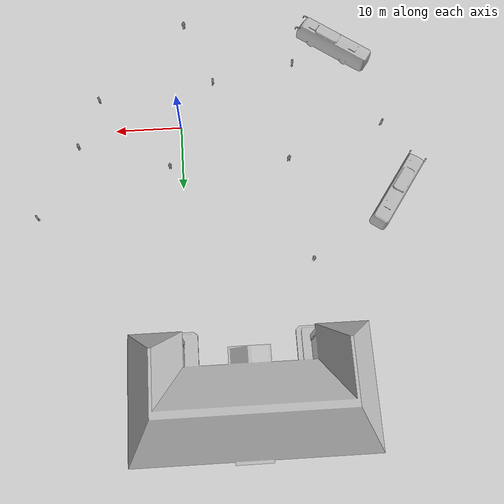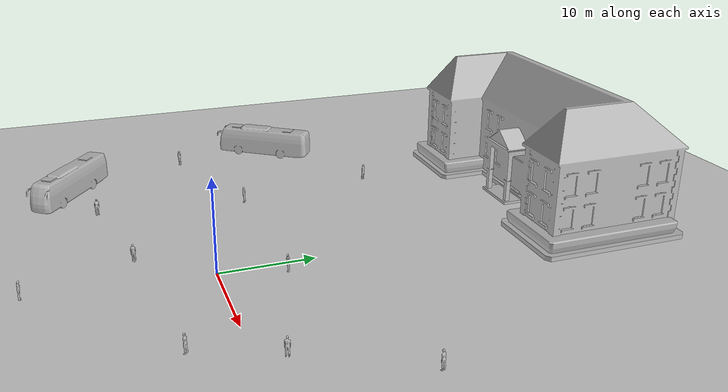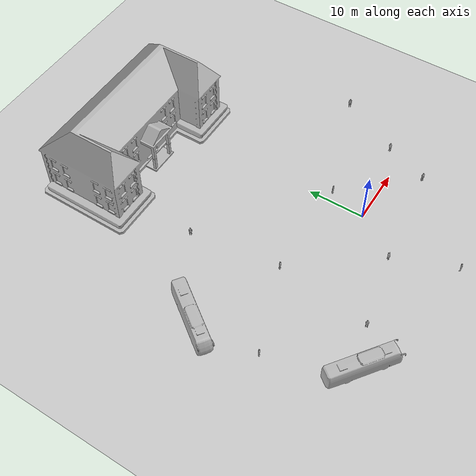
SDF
<sdf version="1.6">
 <world name="default">
  <light name="sun" type="directional">
   <pose>0 0 10 0 -0 0</pose>
   <diffuse>0.8 0.8 0.8 1</diffuse>
   <specular>0.2 0.2 0.2 1</specular>
   <attenuation>
    <range>1000</range>
    <constant>0.9</constant>
    <linear>0.01</linear>
    <quadratic>0.001</quadratic>
   </attenuation>
   <direction>-0.5 0.1 -0.9</direction>
  </light>
  <model name="ground_plane">
   <static>1</static>
   <link name="link">
    <collision name="collision">
     <geometry><plane><normal>0 0 1</normal><size>100 100</size></plane></geometry>
     <surface>
      <contact><collide_bitmask>65535</collide_bitmask></contact>
      <friction><ode><mu>100</mu><mu2>50</mu2></ode></friction>
     </surface>
    </collision>
    <visual name="visual">
     <cast_shadows>0</cast_shadows>
     <geometry><plane><normal>0 0 1</normal><size>100 100</size></plane></geometry>
     <material>
      <script><uri>file://media/materials/scripts/gazebo.material</uri><name>Gazebo/Grey</name></script>
     </material>
    </visual>
   </link>
  </model>
  <gravity>0 0 -9.8</gravity>
  <magnetic_field>6e-06 2.3e-05 -4.2e-05</magnetic_field>
  <atmosphere type="adiabatic"/>
  <physics name="default_physics" default="0" type="ode">
   <max_step_size>0.001</max_step_size>
   <real_time_factor>1</real_time_factor>
   <real_time_update_rate>1000</real_time_update_rate>
  </physics>
  <scene><ambient>0.4 0.4 0.4 1</ambient><background>0.7 0.7 0.7 1</background><shadows>1</shadows></scene>
  <audio><device>default</device></audio>
  <spherical_coordinates>
   <surface_model>EARTH_WGS84</surface_model>
   <latitude_deg>0</latitude_deg>
   <longitude_deg>0</longitude_deg>
   <elevation>0</elevation>
   <heading_deg>0</heading_deg>
  </spherical_coordinates>
  <model name="school">
   <static>1</static>
   <link name="link">
    <collision name="collision">
     <geometry><mesh><uri>model://school/meshes/school.dae</uri></mesh></geometry>
    </collision>
    <visual name="visual"><geometry><mesh><uri>model://school/meshes/school.dae</uri></mesh></geometry></visual>
   </link>
   <pose>-8.00051 42.5798 0 0 -0 0</pose>
  </model>
  <model name="person_standing">
   <link name="link">
    <inertial>
     <pose>0 -0.1 0.95 0 -0 0</pose>
     <mass>80</mass>
     <inertia><ixx>24.88</ixx><ixy>0</ixy><ixz>0</ixz><iyy>25.73</iyy><iyz>0</iyz><izz>2.48</izz></inertia>
    </inertial>
    <collision name="bottom">
     <pose>0 -0.1 0.01 0 -0 0</pose>
     <geometry><box><size>0.5 0.35 0.02</size></box></geometry>
    </collision>
    <collision name="person">
     <pose>0 0 0.02 0.04 -0 0</pose>
     <geometry><mesh><uri>model://person_standing/meshes/standing.dae</uri></mesh></geometry>
    </collision>
    <visual name="visual">
     <pose>0 0 0.02 0.04 -0 0</pose>
     <geometry><mesh><uri>model://person_standing/meshes/standing.dae</uri></mesh></geometry>
    </visual>
   </link>
   <pose>-16.015 6.48712 -0 -1e-06 -1e-06 0.021681</pose>
  </model>
  <model name="person_standing_clone">
   <link name="link">
    <inertial>
     <pose>0 -0.1 0.95 0 -0 0</pose>
     <mass>80</mass>
     <inertia><ixx>24.88</ixx><ixy>0</ixy><ixz>0</ixz><iyy>25.73</iyy><iyz>0</iyz><izz>2.48</izz></inertia>
    </inertial>
    <collision name="bottom">
     <pose>0 -0.1 0.01 0 -0 0</pose>
     <geometry><box><size>0.5 0.35 0.02</size></box></geometry>
    </collision>
    <collision name="person">
     <pose>0 0 0.02 0.04 -0 0</pose>
     <geometry><mesh><uri>model://person_standing/meshes/standing.dae</uri></mesh></geometry>
    </collision>
    <visual name="visual">
     <pose>0 0 0.02 0.04 -0 0</pose>
     <geometry><mesh><uri>model://person_standing/meshes/standing.dae</uri></mesh></geometry>
    </visual>
   </link>
   <pose>1.84202 6.69941 -0 1e-06 1e-06 -0.025637</pose>
  </model>
  <model name="person_standing_clone_0">
   <link name="link">
    <inertial>
     <pose>0 -0.1 0.95 0 -0 0</pose>
     <mass>80</mass>
     <inertia><ixx>24.88</ixx><ixy>0</ixy><ixz>0</ixz><iyy>25.73</iyy><iyz>0</iyz><izz>2.48</izz></inertia>
    </inertial>
    <collision name="bottom">
     <pose>0 -0.1 0.01 0 -0 0</pose>
     <geometry><box><size>0.5 0.35 0.02</size></box></geometry>
    </collision>
    <collision name="person">
     <pose>0 0 0.02 0.04 -0 0</pose>
     <geometry><mesh><uri>model://person_standing/meshes/standing.dae</uri></mesh></geometry>
    </collision>
    <visual name="visual">
     <pose>0 0 0.02 0.04 -0 0</pose>
     <geometry><mesh><uri>model://person_standing/meshes/standing.dae</uri></mesh></geometry>
    </visual>
   </link>
   <pose>-5.28319 -7.26872 0 -1e-06 1e-06 0.993835</pose>
  </model>
  <model name="person_standing_clone_1">
   <link name="link">
    <inertial>
     <pose>0 -0.1 0.95 0 -0 0</pose>
     <mass>80</mass>
     <inertia><ixx>24.88</ixx><ixy>0</ixy><ixz>0</ixz><iyy>25.73</iyy><iyz>0</iyz><izz>2.48</izz></inertia>
    </inertial>
    <collision name="bottom">
     <pose>0 -0.1 0.01 0 -0 0</pose>
     <geometry><box><size>0.5 0.35 0.02</size></box></geometry>
    </collision>
    <collision name="person">
     <pose>0 0 0.02 0.04 -0 0</pose>
     <geometry><mesh><uri>model://person_standing/meshes/standing.dae</uri></mesh></geometry>
    </collision>
    <visual name="visual">
     <pose>0 0 0.02 0.04 -0 0</pose>
     <geometry><mesh><uri>model://person_standing/meshes/standing.dae</uri></mesh></geometry>
    </visual>
   </link>
   <pose>12.5147 -4.99989 -1e-06 -1e-06 -1e-06 -0.68448</pose>
  </model>
  <model name="person_standing_clone_2">
   <link name="link">
    <inertial>
     <pose>0 -0.1 0.95 0 -0 0</pose>
     <mass>80</mass>
     <inertia><ixx>24.88</ixx><ixy>0</ixy><ixz>0</ixz><iyy>25.73</iyy><iyz>0</iyz><izz>2.48</izz></inertia>
    </inertial>
    <collision name="bottom">
     <pose>0 -0.1 0.01 0 -0 0</pose>
     <geometry><box><size>0.5 0.35 0.02</size></box></geometry>
    </collision>
    <collision name="person">
     <pose>0 0 0.02 0.04 -0 0</pose>
     <geometry><mesh><uri>model://person_standing/meshes/standing.dae</uri></mesh></geometry>
    </collision>
    <visual name="visual">
     <pose>0 0 0.02 0.04 -0 0</pose>
     <geometry><mesh><uri>model://person_standing/meshes/standing.dae</uri></mesh></geometry>
    </visual>
   </link>
   <pose>-18.3417 22.0188 0 -1e-06 -1e-06 2.19549</pose>
  </model>
  <model name="person_standing_clone_3">
   <link name="link">
    <inertial>
     <pose>0 -0.1 0.95 0 -0 0</pose>
     <mass>80</mass>
     <inertia><ixx>24.88</ixx><ixy>0</ixy><ixz>0</ixz><iyy>25.73</iyy><iyz>0</iyz><izz>2.48</izz></inertia>
    </inertial>
    <collision name="bottom">
     <pose>0 -0.1 0.01 0 -0 0</pose>
     <geometry><box><size>0.5 0.35 0.02</size></box></geometry>
    </collision>
    <collision name="person">
     <pose>0 0 0.02 0.04 -0 0</pose>
     <geometry><mesh><uri>model://person_standing/meshes/standing.dae</uri></mesh></geometry>
    </collision>
    <visual name="visual">
     <pose>0 0 0.02 0.04 -0 0</pose>
     <geometry><mesh><uri>model://person_standing/meshes/standing.dae</uri></mesh></geometry>
    </visual>
   </link>
   <pose>-30.7063 1.30658 -0 -1e-06 -1e-06 0.399968</pose>
  </model>
  <model name="person_standing_clone_4">
   <link name="link">
    <inertial>
     <pose>0 -0.1 0.95 0 -0 0</pose>
     <mass>80</mass>
     <inertia><ixx>24.88</ixx><ixy>0</ixy><ixz>0</ixz><iyy>25.73</iyy><iyz>0</iyz><izz>2.48</izz></inertia>
    </inertial>
    <collision name="bottom">
     <pose>0 -0.1 0.01 0 -0 0</pose>
     <geometry><box><size>0.5 0.35 0.02</size></box></geometry>
    </collision>
    <collision name="person">
     <pose>0 0 0.02 0.04 -0 0</pose>
     <geometry><mesh><uri>model://person_standing/meshes/standing.dae</uri></mesh></geometry>
    </collision>
    <visual name="visual">
     <pose>0 0 0.02 0.04 -0 0</pose>
     <geometry><mesh><uri>model://person_standing/meshes/standing.dae</uri></mesh></geometry>
    </visual>
   </link>
   <pose>-0.999957 -17.9999 -0 2e-06 1e-06 -3.05634</pose>
  </model>
  <model name="person_standing_clone_5">
   <link name="link">
    <inertial>
     <pose>0 -0.1 0.95 0 -0 0</pose>
     <mass>80</mass>
     <inertia><ixx>24.88</ixx><ixy>0</ixy><ixz>0</ixz><iyy>25.73</iyy><iyz>0</iyz><izz>2.48</izz></inertia>
    </inertial>
    <collision name="bottom">
     <pose>0 -0.1 0.01 0 -0 0</pose>
     <geometry><box><size>0.5 0.35 0.02</size></box></geometry>
    </collision>
    <collision name="person">
     <pose>0 0 0.02 0.04 -0 0</pose>
     <geometry><mesh><uri>model://person_standing/meshes/standing.dae</uri></mesh></geometry>
    </collision>
    <visual name="visual">
     <pose>0 0 0.02 0.04 -0 0</pose>
     <geometry><mesh><uri>model://person_standing/meshes/standing.dae</uri></mesh></geometry>
    </visual>
   </link>
   <pose>21.406 13.6948 -0 0 -1e-06 -1.16263</pose>
  </model>
  <model name="person_standing_clone_6">
   <link name="link">
    <inertial>
     <pose>0 -0.1 0.95 0 -0 0</pose>
     <mass>80</mass>
     <inertia><ixx>24.88</ixx><ixy>0</ixy><ixz>0</ixz><iyy>25.73</iyy><iyz>0</iyz><izz>2.48</izz></inertia>
    </inertial>
    <collision name="bottom">
     <pose>0 -0.1 0.01 0 -0 0</pose>
     <geometry><box><size>0.5 0.35 0.02</size></box></geometry>
    </collision>
    <collision name="person">
     <pose>0 0 0.02 0.04 -0 0</pose>
     <geometry><mesh><uri>model://person_standing/meshes/standing.dae</uri></mesh></geometry>
    </collision>
    <visual name="visual">
     <pose>0 0 0.02 0.04 -0 0</pose>
     <geometry><mesh><uri>model://person_standing/meshes/standing.dae</uri></mesh></geometry>
    </visual>
   </link>
   <pose>15.6509 2.60954 -0 1e-06 1e-06 -1.94896</pose>
  </model>
  <model name="person_standing_clone_7">
   <link name="link">
    <inertial>
     <pose>0 -0.1 0.95 0 -0 0</pose>
     <mass>80</mass>
     <inertia><ixx>24.88</ixx><ixy>0</ixy><ixz>0</ixz><iyy>25.73</iyy><iyz>0</iyz><izz>2.48</izz></inertia>
    </inertial>
    <collision name="bottom">
     <pose>0 -0.1 0.01 0 -0 0</pose>
     <geometry><box><size>0.5 0.35 0.02</size></box></geometry>
    </collision>
    <collision name="person">
     <pose>0 0 0.02 0.04 -0 0</pose>
     <geometry><mesh><uri>model://person_standing/meshes/standing.dae</uri></mesh></geometry>
    </collision>
    <visual name="visual">
     <pose>0 0 0.02 0.04 -0 0</pose>
     <geometry><mesh><uri>model://person_standing/meshes/standing.dae</uri></mesh></geometry>
    </visual>
   </link>
   <pose>-18 -10 -0 -1e-06 -1e-06 1.94493</pose>
  </model>
  <model name="bus">
   <static>1</static>
   <link name="link">
    <collision name="collision">
     <geometry><mesh><scale>0.01 0.01 0.01</scale><uri>model://bus/meshes/bus.obj</uri></mesh></geometry>
    </collision>
    <visual name="visual">
     <geometry><mesh><scale>0.01 0.01 0.01</scale><uri>model://bus/meshes/bus.obj</uri></mesh></geometry>
    </visual>
   </link>
   <pose>-31.3453 12.7415 0 0 0 -0.620144</pose>
  </model>
  <model name="bus_0">
   <static>1</static>
   <link name="link">
    <collision name="collision">
     <geometry><mesh><scale>0.01 0.01 0.01</scale><uri>model://bus/meshes/bus.obj</uri></mesh></geometry>
    </collision>
    <visual name="visual">
     <geometry><mesh><scale>0.01 0.01 0.01</scale><uri>model://bus/meshes/bus.obj</uri></mesh></geometry>
    </visual>
   </link>
   <pose>-24.496 -12.5259 0 0 -0 0.93491</pose>
  </model>
 </world>
</sdf>
